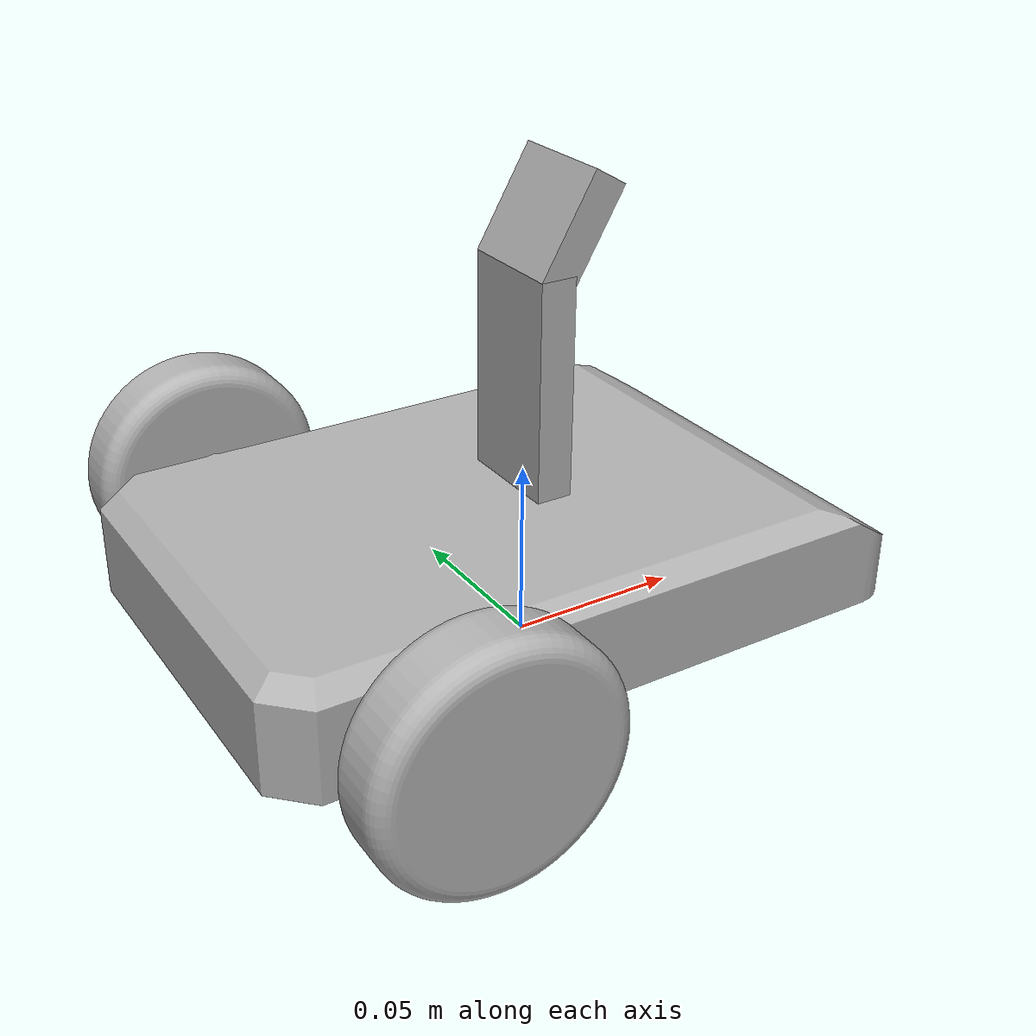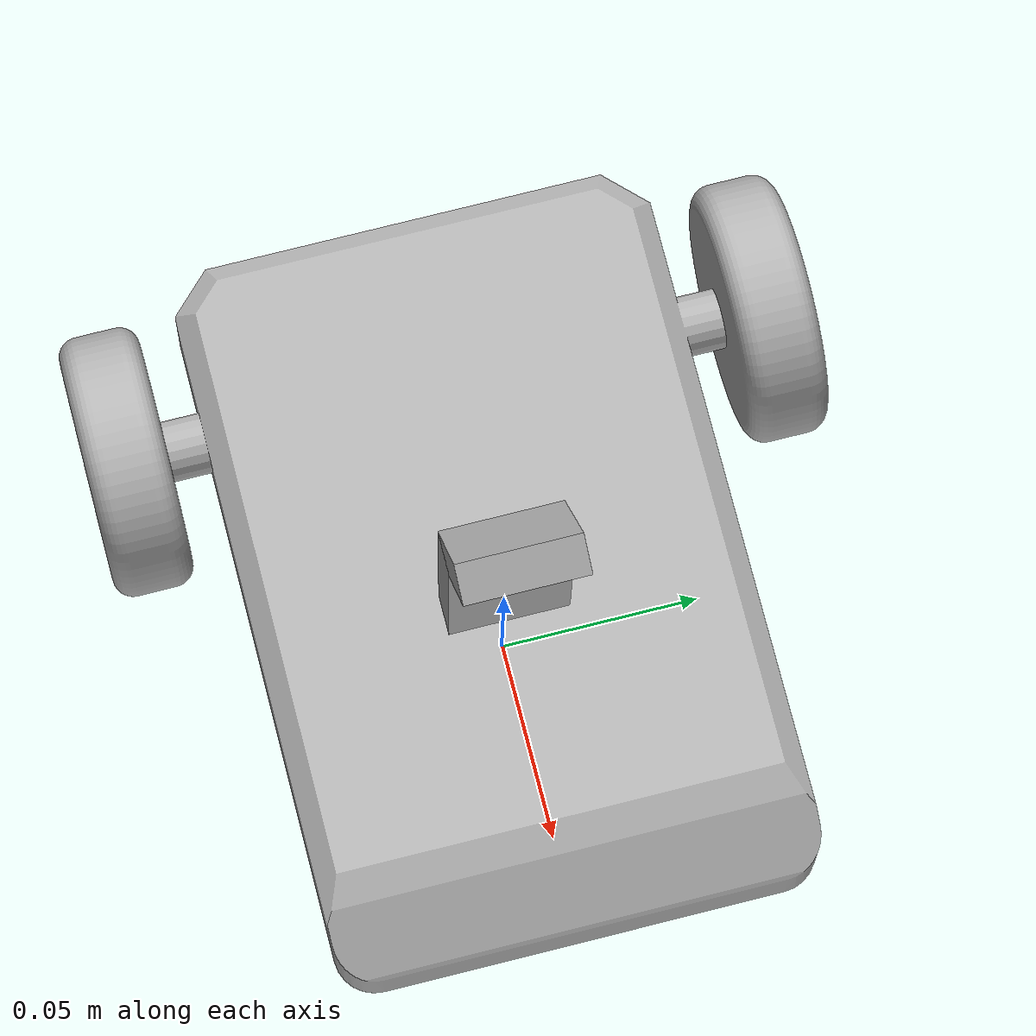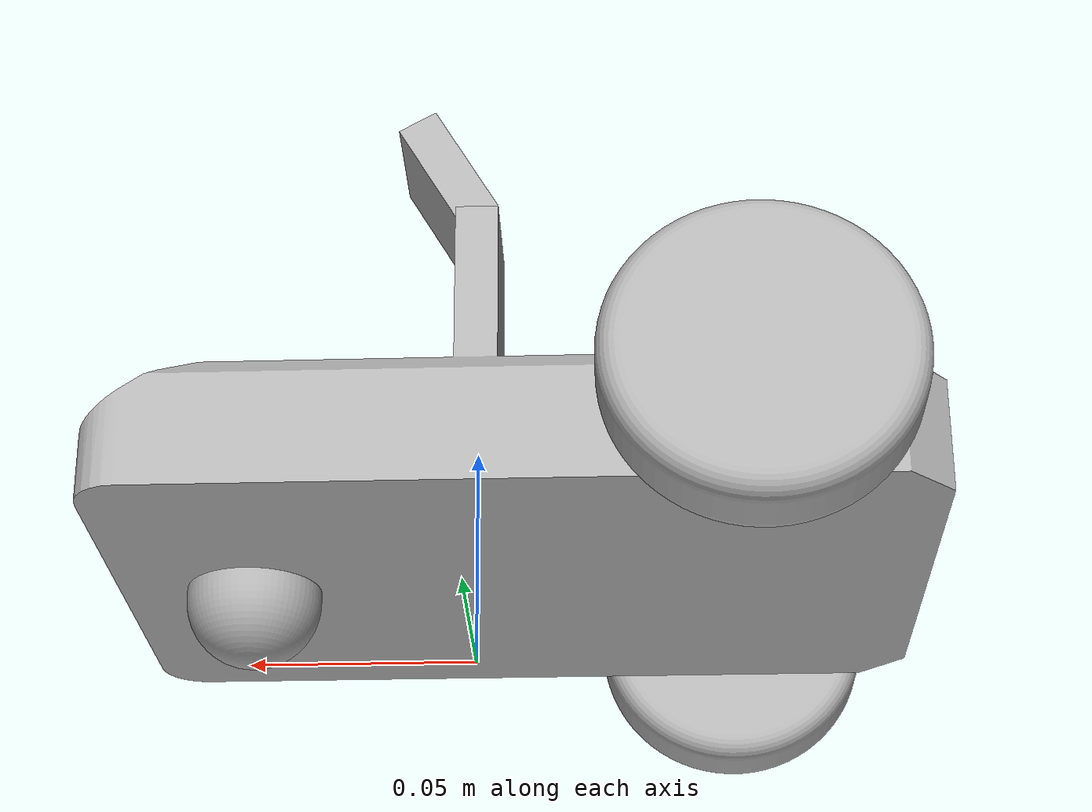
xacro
<?xml version="1.0" ?>
<robot name="maze_robot" xmlns:xacro="http://www.ros.org/wiki/xacro">

<xacro:include filename="$(find maze_robot_description)/urdf/materials.xacro" />
<xacro:include filename="$(find maze_robot_description)/urdf/maze_robot.trans" />
<xacro:include filename="$(find maze_robot_description)/urdf/maze_robot.gazebo" />
<link name="base_link">
  <inertial>
    <origin rpy="0 0 0" xyz="-0.012019012583039234 2.839868334248929e-17 0.03334363059790434"/>
    <mass value="0.88391611210284"/>
    <inertia ixx="0.001145" ixy="0.0" ixz="7e-06" iyy="0.002293" iyz="0.0" izz="0.003199"/>
  </inertial>
  <visual>
    <origin rpy="0 0 0" xyz="0 0 0"/>
    <geometry>
      <mesh filename="package://maze_robot_description/meshes/base_link.stl" scale="0.001 0.001 0.001"/>
    </geometry>
    <material name="silver"/>
  </visual>
  <collision>
    <origin rpy="0 0 0" xyz="0 0 0"/>
    <geometry>
      <mesh filename="package://maze_robot_description/meshes/base_link.stl" scale="0.001 0.001 0.001"/>
    </geometry>
  </collision>
</link>

<link name="right_wheel_1">
  <inertial>
    <origin rpy="0 0 0" xyz="0.0 -0.009999999999999995 0.0"/>
    <mass value="0.05975279634232592"/>
    <inertia ixx="1.7e-05" ixy="-0.0" ixz="0.0" iyy="3.1e-05" iyz="-0.0" izz="1.7e-05"/>
  </inertial>
  <visual>
    <origin rpy="0 0 0" xyz="0.06 0.07 -0.0325"/>
    <geometry>
      <mesh filename="package://maze_robot_description/meshes/right_wheel_1.stl" scale="0.001 0.001 0.001"/>
    </geometry>
    <material name="silver"/>
  </visual>
  <collision>
    <origin rpy="0 0 0" xyz="0.06 0.07 -0.0325"/>
    <geometry>
      <mesh filename="package://maze_robot_description/meshes/right_wheel_1.stl" scale="0.001 0.001 0.001"/>
    </geometry>
  </collision>
</link>

<link name="left_wheel_1">
  <inertial>
    <origin rpy="0 0 0" xyz="0.0 0.009999999999999995 0.0"/>
    <mass value="0.05975279634232592"/>
    <inertia ixx="1.7e-05" ixy="0.0" ixz="-0.0" iyy="3.1e-05" iyz="0.0" izz="1.7e-05"/>
  </inertial>
  <visual>
    <origin rpy="0 0 0" xyz="0.06 -0.07 -0.0325"/>
    <geometry>
      <mesh filename="package://maze_robot_description/meshes/left_wheel_1.stl" scale="0.001 0.001 0.001"/>
    </geometry>
    <material name="silver"/>
  </visual>
  <collision>
    <origin rpy="0 0 0" xyz="0.06 -0.07 -0.0325"/>
    <geometry>
      <mesh filename="package://maze_robot_description/meshes/left_wheel_1.stl" scale="0.001 0.001 0.001"/>
    </geometry>
  </collision>
</link>

<link name="top_camera_1">
  <inertial>
    <origin rpy="0 0 0" xyz="0.011830127018922196 0.015 0.01049038105676657"/>
    <mass value="0.011880000000000009"/>
    <inertia ixx="2e-06" ixy="0.0" ixz="-0.0" iyy="1e-06" iyz="0.0" izz="1e-06"/>
  </inertial>
  <visual>
    <origin rpy="0 0 0" xyz="0.005 0.015 -0.1075"/>
    <geometry>
      <mesh filename="package://maze_robot_description/meshes/top_camera_1.stl" scale="0.001 0.001 0.001"/>
    </geometry>
    <material name="silver"/>
  </visual>
  <collision>
    <origin rpy="0 0 0" xyz="0.005 0.015 -0.1075"/>
    <geometry>
      <mesh filename="package://maze_robot_description/meshes/top_camera_1.stl" scale="0.001 0.001 0.001"/>
    </geometry>
  </collision>
</link>

<link name="caster_1">
  <inertial>
    <origin rpy="0 0 0" xyz="-0.029999999999999985 0.0 -0.0067500000000000025"/>
    <mass value="0.0693604753050371"/>
    <inertia ixx="5e-06" ixy="0.0" ixz="-0.0" iyy="5e-06" iyz="0.0" izz="7e-06"/>
  </inertial>
  <visual>
    <origin rpy="0 0 0" xyz="-0.08 -0.0 -0.0175"/>
    <geometry>
      <mesh filename="package://maze_robot_description/meshes/caster_1.stl" scale="0.001 0.001 0.001"/>
    </geometry>
    <material name="silver"/>
  </visual>
  <collision>
    <origin rpy="0 0 0" xyz="-0.08 -0.0 -0.0175"/>
    <geometry>
      <mesh filename="package://maze_robot_description/meshes/caster_1.stl" scale="0.001 0.001 0.001"/>
    </geometry>
  </collision>
</link>

<joint name="right_joint" type="continuous">
  <origin rpy="0 0 0" xyz="-0.06 -0.07 0.0325"/>
  <parent link="base_link"/>
  <child link="right_wheel_1"/>
  <axis xyz="0.0 1.0 0.0"/>
</joint>

<joint name="left_joint" type="continuous">
  <origin rpy="0 0 0" xyz="-0.06 0.07 0.0325"/>
  <parent link="base_link"/>
  <child link="left_wheel_1"/>
  <axis xyz="0.0 1.0 0.0"/>
</joint>

<joint name="camera_joint" type="fixed">
  <origin rpy="0 0 0" xyz="-0.005 -0.015 0.1075"/>
  <parent link="base_link"/>
  <child link="top_camera_1"/>
</joint>

<joint name="caster_joint" type="fixed">
  <origin rpy="0 0 0" xyz="0.08 0.0 0.0175"/>
  <parent link="base_link"/>
  <child link="caster_1"/>
</joint>

</robot>

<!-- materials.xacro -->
<robot name="maze_robot" xmlns:xacro="http://www.ros.org/wiki/xacro" >

<material name="silver">
  <color rgba="0.700 0.700 0.700 1.000"/>
</material>

</robot>

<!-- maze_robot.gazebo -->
<robot name="maze_robot" xmlns:xacro="http://www.ros.org/wiki/xacro" >

<xacro:property name="body_color" value="Gazebo/Silver" />

<gazebo>
  <plugin filename="libgazebo_ros_control.so" name="control"/>
</gazebo>
<gazebo reference="base_link">
  <material>${body_color}</material>
  <mu1>0.2</mu1>
  <mu2>0.2</mu2>
  <selfCollide>true</selfCollide>
  <gravity>true</gravity>
</gazebo>

<gazebo reference="right_wheel_1">
  <material>${body_color}</material>
  <mu1>100</mu1>
  <mu2>100</mu2>
  <selfCollide>true</selfCollide>
</gazebo>

<gazebo reference="left_wheel_1">
  <material>${body_color}</material>
  <mu1>100</mu1>
  <mu2>100</mu2>
  <selfCollide>true</selfCollide>
</gazebo>

<gazebo reference="top_camera_1">
  <material>${body_color}</material>
  <mu1>0.2</mu1>
  <mu2>0.2</mu2>
  <selfCollide>true</selfCollide>
</gazebo>

<gazebo reference="caster_1">
  <material>${body_color}</material>
  <mu1>0.2</mu1>
  <mu2>0.2</mu2>
  <selfCollide>true</selfCollide>
</gazebo>

<gazebo>
   <plugin name="differential_drive_controller" filename="libgazebo_ros_diff_drive.so">

    <!-- Plugin update rate in Hz -->
    <updateRate>10</updateRate>

    <!-- Name of left joint, defaults to `left_joint` -->
    <leftJoint>left_joint</leftJoint>

    <!-- Name of right joint, defaults to `right_joint` -->
    <rightJoint>right_joint</rightJoint>

    <!-- The distance from the center of one wheel to the other, in meters, defaults to 0.34 m -->
    <wheelSeparation>0.140</wheelSeparation>

    <!-- Diameter of the wheels, in meters, defaults to 0.15 m -->
    <wheelDiameter>0.065</wheelDiameter>

    <!-- Wheel acceleration, in rad/s^2, defaults to 0.0 rad/s^2 -->
    <wheelAcceleration>1.0</wheelAcceleration>

    <!-- Maximum torque which the wheels can produce, in Nm, defaults to 5 Nm -->
    <wheelTorque>20</wheelTorque>

    <!-- Topic to receive geometry_msgs/Twist message commands, defaults to `cmd_vel` -->
    <commandTopic>cmd_vel</commandTopic>

    <!-- Topic to publish nav_msgs/Odometry messages, defaults to `odom` -->
    <odometryTopic>odom</odometryTopic>

    <!-- Odometry frame, defaults to `odom` -->
    <odometryFrame>odom</odometryFrame>

    <!-- Robot frame to calculate odometry from, defaults to `base_footprint` -->
    <robotBaseFrame>base_link</robotBaseFrame>

    <!-- Odometry source, 0 for ENCODER, 1 for WORLD, defaults to WORLD -->
    <odometrySource>1</odometrySource>

    <!-- Set to true to publish transforms for the wheel links, defaults to false -->
    <publishWheelTF>true</publishWheelTF>

    <!-- Set to true to publish transforms for the odometry, defaults to true -->
    <publishOdom>true</publishOdom>

    <!-- Set to true to publish sensor_msgs/JointState on /joint_states for the wheel joints, defaults to false -->
    <publishWheelJointState>true</publishWheelJointState>

    <!-- Set to true to swap right and left wheels, defaults to true -->
    <legacyMode>false</legacyMode>
  </plugin>
</gazebo>

  <!-- camera -->
  <gazebo reference="top_camera_1">
    <sensor type="camera" name="camera1">
      <update_rate>30.0</update_rate>
      <camera name="head">
        <horizontal_fov>1.047</horizontal_fov>
        <image>
          <width>640</width>
          <height>480</height>
          <format>R8G8B8</format>
        </image>
        <clip>
          <near>0.02</near>
          <far>300</far>
        </clip>
        <noise>
          <type>gaussian</type>
          <!-- Noise is sampled independently per pixel on each frame.
               That pixel's noise value is added to each of its color
               channels, which at that point lie in the range [0,1]. -->
          <mean>0.0</mean>
          <stddev>0.007</stddev>
        </noise>
      </camera>
      <plugin name="camera_controller" filename="libgazebo_ros_camera.so">
        <alwaysOn>true</alwaysOn>
        <updateRate>0.0</updateRate>
        <cameraName>maze_robot/camera1</cameraName>
        <imageTopicName>image_raw</imageTopicName>
        <cameraInfoTopicName>camera_info</cameraInfoTopicName>
        <frameName>top_camera_1</frameName>
        <hackBaseline>0.07</hackBaseline>
        <distortionK1>0.0</distortionK1>
        <distortionK2>0.0</distortionK2>
        <distortionK3>0.0</distortionK3>
        <distortionT1>0.0</distortionT1>
        <distortionT2>0.0</distortionT2>
      </plugin>
    </sensor>
  </gazebo>

</robot>
